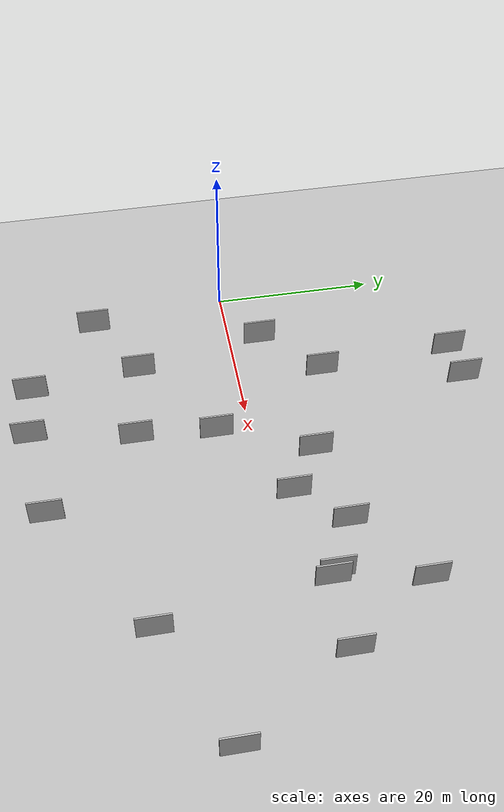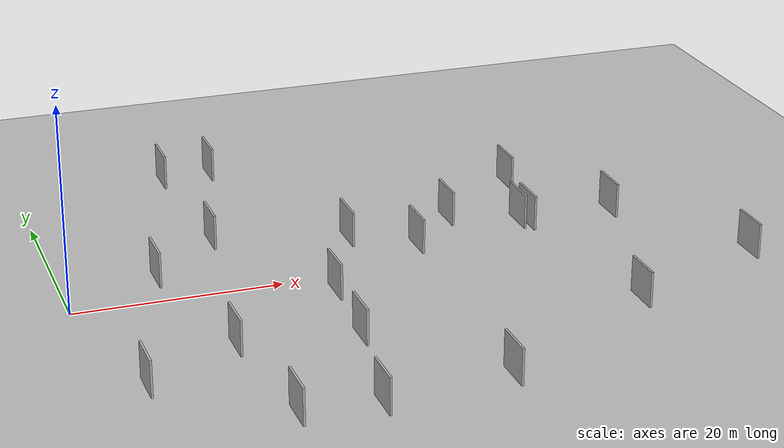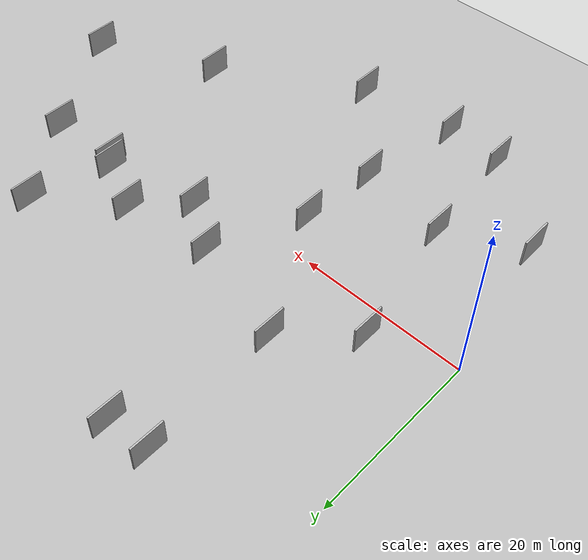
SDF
<?xml version="1.0" encoding="utf-8"?>

<sdf version="1.6">

   <world name="default">

      <gui fullscreen="0">

         <camera name="user_camera">

            <pose>-15 0 4.57585 0 0 0</pose>

            <view_controller>orbit</view_controller>

         </camera>

      </gui>

      <scene>

         <sky>

           <clouds>

             <speed>12</speed>

           </clouds>

         </sky>

         <ambient>0.4 0.4 0.4 1</ambient>

         <background>0.7 0.7 0.7 1</background>

         <shadows>1</shadows>

      </scene>

      <gravity>0 0 -9.8066</gravity>

      <magnetic_field>6e-06 2.3e-05 -4.2e-05</magnetic_field>

      <physics default="0" name="default_physics" type="ode">

         <ode>

            <solver>

               <type>quick</type>

               <iters>10</iters>

               <sor>1.0</sor>

               <use_dynamic_moi_rescaling>0</use_dynamic_moi_rescaling>

            </solver>

            <constraints>

               <cfm>0</cfm>

               <erp>0.2</erp>

               <contact_max_correcting_vel>100</contact_max_correcting_vel>

               <contact_surface_layer>0.001</contact_surface_layer>

            </constraints>

         </ode>

         <max_step_size>0.004</max_step_size>

         <real_time_factor>1</real_time_factor>

         <real_time_update_rate>250</real_time_update_rate>

      </physics>

      <light name="sun" type="directional">

         <cast_shadows>1</cast_shadows>

         <pose>0 0 10 0 0 0</pose>

         <diffuse>0.8 0.8 0.8 1</diffuse>

         <specular>0.2 0.2 0.2 1</specular>

         <attenuation>

            <range>1000</range>

            <constant>0.9</constant>

            <linear>0.01</linear>

            <quadratic>0.001</quadratic>

         </attenuation>

         <direction>-0.5 0.1 -0.9</direction>

      </light>

      <include>

         <name>ground_plane_1</name>

         <uri>model://HANNAS_ground_plane</uri>

         <pose>0 0 0  0 0 0</pose>

      </include>

      <include>

         <name>ground_plane_2</name>

         <uri>model://HANNAS_ground_plane</uri>

         <pose>100 0 0  0 0 0</pose>

      </include>

      <model name="HANNAS_wall_1">

         <static>1</static>

         <pose frame="">48.4677 15.3908 0.0 0.000000 0.000000 1.570796</pose>

         <link name="link">

            <pose frame="">0 0 2.00 0 0 0</pose>

            <collision name="collision">

               <geometry>

                  <box>

                     <size>4.00 0.2 4.00</size>

                  </box>

               </geometry>

               <max_contacts>10</max_contacts>

               <surface>

                  <contact>

                     <ode/>

                  </contact>

                  <bounce/>

                  <friction>

                     <torsional>

                        <ode/>

                     </torsional>

                     <ode/>

                  </friction>

               </surface>

            </collision>

            <visual name="visual">

               <cast_shadows>0</cast_shadows>

               <geometry>

                  <box>

                     <size>4.00 0.2 4.00</size>

                  </box>

               </geometry>

               <material>

                  <script>

                     <uri>model://HANNAS_wall/materials/scripts</uri>

                     <uri>model://HANNAS_wall/materials/textures</uri>

                     <name>vrc/HANNAS_wall</name>

                  </script>

               </material>

            </visual>

            <self_collide>0</self_collide>

            <enable_wind>0</enable_wind>

            <kinematic>0</kinematic>

         </link>

      </model>

      <model name="HANNAS_wall_2">

         <static>1</static>

         <pose frame="">64.0958 -8.1620 0.0 0.000000 0.000000 1.570796</pose>

         <link name="link">

            <pose frame="">0 0 2.00 0 0 0</pose>

            <collision name="collision">

               <geometry>

                  <box>

                     <size>4.00 0.2 4.00</size>

                  </box>

               </geometry>

               <max_contacts>10</max_contacts>

               <surface>

                  <contact>

                     <ode/>

                  </contact>

                  <bounce/>

                  <friction>

                     <torsional>

                        <ode/>

                     </torsional>

                     <ode/>

                  </friction>

               </surface>

            </collision>

            <visual name="visual">

               <cast_shadows>0</cast_shadows>

               <geometry>

                  <box>

                     <size>4.00 0.2 4.00</size>

                  </box>

               </geometry>

               <material>

                  <script>

                     <uri>model://HANNAS_wall/materials/scripts</uri>

                     <uri>model://HANNAS_wall/materials/textures</uri>

                     <name>vrc/HANNAS_wall</name>

                  </script>

               </material>

            </visual>

            <self_collide>0</self_collide>

            <enable_wind>0</enable_wind>

            <kinematic>0</kinematic>

         </link>

      </model>

      <model name="HANNAS_wall_3">

         <static>1</static>

         <pose frame="">39.4368 8.5772 0.0 0.000000 0.000000 1.570796</pose>

         <link name="link">

            <pose frame="">0 0 2.00 0 0 0</pose>

            <collision name="collision">

               <geometry>

                  <box>

                     <size>4.00 0.2 4.00</size>

                  </box>

               </geometry>

               <max_contacts>10</max_contacts>

               <surface>

                  <contact>

                     <ode/>

                  </contact>

                  <bounce/>

                  <friction>

                     <torsional>

                        <ode/>

                     </torsional>

                     <ode/>

                  </friction>

               </surface>

            </collision>

            <visual name="visual">

               <cast_shadows>0</cast_shadows>

               <geometry>

                  <box>

                     <size>4.00 0.2 4.00</size>

                  </box>

               </geometry>

               <material>

                  <script>

                     <uri>model://HANNAS_wall/materials/scripts</uri>

                     <uri>model://HANNAS_wall/materials/textures</uri>

                     <name>vrc/HANNAS_wall</name>

                  </script>

               </material>

            </visual>

            <self_collide>0</self_collide>

            <enable_wind>0</enable_wind>

            <kinematic>0</kinematic>

         </link>

      </model>

      <model name="HANNAS_wall_4">

         <static>1</static>

         <pose frame="">14.8949 27.1481 0.0 0.000000 0.000000 1.570796</pose>

         <link name="link">

            <pose frame="">0 0 2.00 0 0 0</pose>

            <collision name="collision">

               <geometry>

                  <box>

                     <size>4.00 0.2 4.00</size>

                  </box>

               </geometry>

               <max_contacts>10</max_contacts>

               <surface>

                  <contact>

                     <ode/>

                  </contact>

                  <bounce/>

                  <friction>

                     <torsional>

                        <ode/>

                     </torsional>

                     <ode/>

                  </friction>

               </surface>

            </collision>

            <visual name="visual">

               <cast_shadows>0</cast_shadows>

               <geometry>

                  <box>

                     <size>4.00 0.2 4.00</size>

                  </box>

               </geometry>

               <material>

                  <script>

                     <uri>model://HANNAS_wall/materials/scripts</uri>

                     <uri>model://HANNAS_wall/materials/textures</uri>

                     <name>vrc/HANNAS_wall</name>

                  </script>

               </material>

            </visual>

            <self_collide>0</self_collide>

            <enable_wind>0</enable_wind>

            <kinematic>0</kinematic>

         </link>

      </model>

      <model name="HANNAS_wall_5">

         <static>1</static>

         <pose frame="">3.1831 -17.0369 0.0 0.000000 0.000000 1.570796</pose>

         <link name="link">

            <pose frame="">0 0 2.00 0 0 0</pose>

            <collision name="collision">

               <geometry>

                  <box>

                     <size>4.00 0.2 4.00</size>

                  </box>

               </geometry>

               <max_contacts>10</max_contacts>

               <surface>

                  <contact>

                     <ode/>

                  </contact>

                  <bounce/>

                  <friction>

                     <torsional>

                        <ode/>

                     </torsional>

                     <ode/>

                  </friction>

               </surface>

            </collision>

            <visual name="visual">

               <cast_shadows>0</cast_shadows>

               <geometry>

                  <box>

                     <size>4.00 0.2 4.00</size>

                  </box>

               </geometry>

               <material>

                  <script>

                     <uri>model://HANNAS_wall/materials/scripts</uri>

                     <uri>model://HANNAS_wall/materials/textures</uri>

                     <name>vrc/HANNAS_wall</name>

                  </script>

               </material>

            </visual>

            <self_collide>0</self_collide>

            <enable_wind>0</enable_wind>

            <kinematic>0</kinematic>

         </link>

      </model>

      <model name="HANNAS_wall_6">

         <static>1</static>

         <pose frame="">34.3728 3.1856 0.0 0.000000 0.000000 1.570796</pose>

         <link name="link">

            <pose frame="">0 0 2.00 0 0 0</pose>

            <collision name="collision">

               <geometry>

                  <box>

                     <size>4.00 0.2 4.00</size>

                  </box>

               </geometry>

               <max_contacts>10</max_contacts>

               <surface>

                  <contact>

                     <ode/>

                  </contact>

                  <bounce/>

                  <friction>

                     <torsional>

                        <ode/>

                     </torsional>

                     <ode/>

                  </friction>

               </surface>

            </collision>

            <visual name="visual">

               <cast_shadows>0</cast_shadows>

               <geometry>

                  <box>

                     <size>4.00 0.2 4.00</size>

                  </box>

               </geometry>

               <material>

                  <script>

                     <uri>model://HANNAS_wall/materials/scripts</uri>

                     <uri>model://HANNAS_wall/materials/textures</uri>

                     <name>vrc/HANNAS_wall</name>

                  </script>

               </material>

            </visual>

            <self_collide>0</self_collide>

            <enable_wind>0</enable_wind>

            <kinematic>0</kinematic>

         </link>

      </model>

      <model name="HANNAS_wall_7">

         <static>1</static>

         <pose frame="">20.0250 27.7180 0.0 0.000000 0.000000 1.570796</pose>

         <link name="link">

            <pose frame="">0 0 2.00 0 0 0</pose>

            <collision name="collision">

               <geometry>

                  <box>

                     <size>4.00 0.2 4.00</size>

                  </box>

               </geometry>

               <max_contacts>10</max_contacts>

               <surface>

                  <contact>

                     <ode/>

                  </contact>

                  <bounce/>

                  <friction>

                     <torsional>

                        <ode/>

                     </torsional>

                     <ode/>

                  </friction>

               </surface>

            </collision>

            <visual name="visual">

               <cast_shadows>0</cast_shadows>

               <geometry>

                  <box>

                     <size>4.00 0.2 4.00</size>

                  </box>

               </geometry>

               <material>

                  <script>

                     <uri>model://HANNAS_wall/materials/scripts</uri>

                     <uri>model://HANNAS_wall/materials/textures</uri>

                     <name>vrc/HANNAS_wall</name>

                  </script>

               </material>

            </visual>

            <self_collide>0</self_collide>

            <enable_wind>0</enable_wind>

            <kinematic>0</kinematic>

         </link>

      </model>

      <model name="HANNAS_wall_8">

         <static>1</static>

         <pose frame="">32.9250 -24.9039 0.0 0.000000 0.000000 1.570796</pose>

         <link name="link">

            <pose frame="">0 0 2.00 0 0 0</pose>

            <collision name="collision">

               <geometry>

                  <box>

                     <size>4.00 0.2 4.00</size>

                  </box>

               </geometry>

               <max_contacts>10</max_contacts>

               <surface>

                  <contact>

                     <ode/>

                  </contact>

                  <bounce/>

                  <friction>

                     <torsional>

                        <ode/>

                     </torsional>

                     <ode/>

                  </friction>

               </surface>

            </collision>

            <visual name="visual">

               <cast_shadows>0</cast_shadows>

               <geometry>

                  <box>

                     <size>4.00 0.2 4.00</size>

                  </box>

               </geometry>

               <material>

                  <script>

                     <uri>model://HANNAS_wall/materials/scripts</uri>

                     <uri>model://HANNAS_wall/materials/textures</uri>

                     <name>vrc/HANNAS_wall</name>

                  </script>

               </material>

            </visual>

            <self_collide>0</self_collide>

            <enable_wind>0</enable_wind>

            <kinematic>0</kinematic>

         </link>

      </model>

      <model name="HANNAS_wall_9">

         <static>1</static>

         <pose frame="">49.6606 -14.6909 0.0 0.000000 0.000000 1.570796</pose>

         <link name="link">

            <pose frame="">0 0 2.00 0 0 0</pose>

            <collision name="collision">

               <geometry>

                  <box>

                     <size>4.00 0.2 4.00</size>

                  </box>

               </geometry>

               <max_contacts>10</max_contacts>

               <surface>

                  <contact>

                     <ode/>

                  </contact>

                  <bounce/>

                  <friction>

                     <torsional>

                        <ode/>

                     </torsional>

                     <ode/>

                  </friction>

               </surface>

            </collision>

            <visual name="visual">

               <cast_shadows>0</cast_shadows>

               <geometry>

                  <box>

                     <size>4.00 0.2 4.00</size>

                  </box>

               </geometry>

               <material>

                  <script>

                     <uri>model://HANNAS_wall/materials/scripts</uri>

                     <uri>model://HANNAS_wall/materials/textures</uri>

                     <name>vrc/HANNAS_wall</name>

                  </script>

               </material>

            </visual>

            <self_collide>0</self_collide>

            <enable_wind>0</enable_wind>

            <kinematic>0</kinematic>

         </link>

      </model>

      <model name="HANNAS_wall_10">

         <static>1</static>

         <pose frame="">23.0791 -13.6613 0.0 0.000000 0.000000 1.570796</pose>

         <link name="link">

            <pose frame="">0 0 2.00 0 0 0</pose>

            <collision name="collision">

               <geometry>

                  <box>

                     <size>4.00 0.2 4.00</size>

                  </box>

               </geometry>

               <max_contacts>10</max_contacts>

               <surface>

                  <contact>

                     <ode/>

                  </contact>

                  <bounce/>

                  <friction>

                     <torsional>

                        <ode/>

                     </torsional>

                     <ode/>

                  </friction>

               </surface>

            </collision>

            <visual name="visual">

               <cast_shadows>0</cast_shadows>

               <geometry>

                  <box>

                     <size>4.00 0.2 4.00</size>

                  </box>

               </geometry>

               <material>

                  <script>

                     <uri>model://HANNAS_wall/materials/scripts</uri>

                     <uri>model://HANNAS_wall/materials/textures</uri>

                     <name>vrc/HANNAS_wall</name>

                  </script>

               </material>

            </visual>

            <self_collide>0</self_collide>

            <enable_wind>0</enable_wind>

            <kinematic>0</kinematic>

         </link>

      </model>

      <model name="HANNAS_wall_11">

         <static>1</static>

         <pose frame="">8.8388 3.7757 0.0 0.000000 0.000000 1.570796</pose>

         <link name="link">

            <pose frame="">0 0 2.00 0 0 0</pose>

            <collision name="collision">

               <geometry>

                  <box>

                     <size>4.00 0.2 4.00</size>

                  </box>

               </geometry>

               <max_contacts>10</max_contacts>

               <surface>

                  <contact>

                     <ode/>

                  </contact>

                  <bounce/>

                  <friction>

                     <torsional>

                        <ode/>

                     </torsional>

                     <ode/>

                  </friction>

               </surface>

            </collision>

            <visual name="visual">

               <cast_shadows>0</cast_shadows>

               <geometry>

                  <box>

                     <size>4.00 0.2 4.00</size>

                  </box>

               </geometry>

               <material>

                  <script>

                     <uri>model://HANNAS_wall/materials/scripts</uri>

                     <uri>model://HANNAS_wall/materials/textures</uri>

                     <name>vrc/HANNAS_wall</name>

                  </script>

               </material>

            </visual>

            <self_collide>0</self_collide>

            <enable_wind>0</enable_wind>

            <kinematic>0</kinematic>

         </link>

      </model>

      <model name="HANNAS_wall_12">

         <static>1</static>

         <pose frame="">20.8312 -26.2066 0.0 0.000000 0.000000 1.570796</pose>

         <link name="link">

            <pose frame="">0 0 2.00 0 0 0</pose>

            <collision name="collision">

               <geometry>

                  <box>

                     <size>4.00 0.2 4.00</size>

                  </box>

               </geometry>

               <max_contacts>10</max_contacts>

               <surface>

                  <contact>

                     <ode/>

                  </contact>

                  <bounce/>

                  <friction>

                     <torsional>

                        <ode/>

                     </torsional>

                     <ode/>

                  </friction>

               </surface>

            </collision>

            <visual name="visual">

               <cast_shadows>0</cast_shadows>

               <geometry>

                  <box>

                     <size>4.00 0.2 4.00</size>

                  </box>

               </geometry>

               <material>

                  <script>

                     <uri>model://HANNAS_wall/materials/scripts</uri>

                     <uri>model://HANNAS_wall/materials/textures</uri>

                     <name>vrc/HANNAS_wall</name>

                  </script>

               </material>

            </visual>

            <self_collide>0</self_collide>

            <enable_wind>0</enable_wind>

            <kinematic>0</kinematic>

         </link>

      </model>

      <model name="HANNAS_wall_13">

         <static>1</static>

         <pose frame="">45.8858 5.6505 0.0 0.000000 0.000000 1.570796</pose>

         <link name="link">

            <pose frame="">0 0 2.00 0 0 0</pose>

            <collision name="collision">

               <geometry>

                  <box>

                     <size>4.00 0.2 4.00</size>

                  </box>

               </geometry>

               <max_contacts>10</max_contacts>

               <surface>

                  <contact>

                     <ode/>

                  </contact>

                  <bounce/>

                  <friction>

                     <torsional>

                        <ode/>

                     </torsional>

                     <ode/>

                  </friction>

               </surface>

            </collision>

            <visual name="visual">

               <cast_shadows>0</cast_shadows>

               <geometry>

                  <box>

                     <size>4.00 0.2 4.00</size>

                  </box>

               </geometry>

               <material>

                  <script>

                     <uri>model://HANNAS_wall/materials/scripts</uri>

                     <uri>model://HANNAS_wall/materials/textures</uri>

                     <name>vrc/HANNAS_wall</name>

                  </script>

               </material>

            </visual>

            <self_collide>0</self_collide>

            <enable_wind>0</enable_wind>

            <kinematic>0</kinematic>

         </link>

      </model>

      <model name="HANNAS_wall_14">

         <static>1</static>

         <pose frame="">15.8014 10.5231 0.0 0.000000 0.000000 1.570796</pose>

         <link name="link">

            <pose frame="">0 0 2.00 0 0 0</pose>

            <collision name="collision">

               <geometry>

                  <box>

                     <size>4.00 0.2 4.00</size>

                  </box>

               </geometry>

               <max_contacts>10</max_contacts>

               <surface>

                  <contact>

                     <ode/>

                  </contact>

                  <bounce/>

                  <friction>

                     <torsional>

                        <ode/>

                     </torsional>

                     <ode/>

                  </friction>

               </surface>

            </collision>

            <visual name="visual">

               <cast_shadows>0</cast_shadows>

               <geometry>

                  <box>

                     <size>4.00 0.2 4.00</size>

                  </box>

               </geometry>

               <material>

                  <script>

                     <uri>model://HANNAS_wall/materials/scripts</uri>

                     <uri>model://HANNAS_wall/materials/textures</uri>

                     <name>vrc/HANNAS_wall</name>

                  </script>

               </material>

            </visual>

            <self_collide>0</self_collide>

            <enable_wind>0</enable_wind>

            <kinematic>0</kinematic>

         </link>

      </model>

      <model name="HANNAS_wall_15">

         <static>1</static>

         <pose frame="">23.8024 -4.1161 0.0 0.000000 0.000000 1.570796</pose>

         <link name="link">

            <pose frame="">0 0 2.00 0 0 0</pose>

            <collision name="collision">

               <geometry>

                  <box>

                     <size>4.00 0.2 4.00</size>

                  </box>

               </geometry>

               <max_contacts>10</max_contacts>

               <surface>

                  <contact>

                     <ode/>

                  </contact>

                  <bounce/>

                  <friction>

                     <torsional>

                        <ode/>

                     </torsional>

                     <ode/>

                  </friction>

               </surface>

            </collision>

            <visual name="visual">

               <cast_shadows>0</cast_shadows>

               <geometry>

                  <box>

                     <size>4.00 0.2 4.00</size>

                  </box>

               </geometry>

               <material>

                  <script>

                     <uri>model://HANNAS_wall/materials/scripts</uri>

                     <uri>model://HANNAS_wall/materials/textures</uri>

                     <name>vrc/HANNAS_wall</name>

                  </script>

               </material>

            </visual>

            <self_collide>0</self_collide>

            <enable_wind>0</enable_wind>

            <kinematic>0</kinematic>

         </link>

      </model>

      <model name="HANNAS_wall_16">

         <static>1</static>

         <pose frame="">28.5617 6.9822 0.0 0.000000 0.000000 1.570796</pose>

         <link name="link">

            <pose frame="">0 0 2.00 0 0 0</pose>

            <collision name="collision">

               <geometry>

                  <box>

                     <size>4.00 0.2 4.00</size>

                  </box>

               </geometry>

               <max_contacts>10</max_contacts>

               <surface>

                  <contact>

                     <ode/>

                  </contact>

                  <bounce/>

                  <friction>

                     <torsional>

                        <ode/>

                     </torsional>

                     <ode/>

                  </friction>

               </surface>

            </collision>

            <visual name="visual">

               <cast_shadows>0</cast_shadows>

               <geometry>

                  <box>

                     <size>4.00 0.2 4.00</size>

                  </box>

               </geometry>

               <material>

                  <script>

                     <uri>model://HANNAS_wall/materials/scripts</uri>

                     <uri>model://HANNAS_wall/materials/textures</uri>

                     <name>vrc/HANNAS_wall</name>

                  </script>

               </material>

            </visual>

            <self_collide>0</self_collide>

            <enable_wind>0</enable_wind>

            <kinematic>0</kinematic>

         </link>

      </model>

      <model name="HANNAS_wall_17">

         <static>1</static>

         <pose frame="">55.5647 5.2991 0.0 0.000000 0.000000 1.570796</pose>

         <link name="link">

            <pose frame="">0 0 2.00 0 0 0</pose>

            <collision name="collision">

               <geometry>

                  <box>

                     <size>4.00 0.2 4.00</size>

                  </box>

               </geometry>

               <max_contacts>10</max_contacts>

               <surface>

                  <contact>

                     <ode/>

                  </contact>

                  <bounce/>

                  <friction>

                     <torsional>

                        <ode/>

                     </torsional>

                     <ode/>

                  </friction>

               </surface>

            </collision>

            <visual name="visual">

               <cast_shadows>0</cast_shadows>

               <geometry>

                  <box>

                     <size>4.00 0.2 4.00</size>

                  </box>

               </geometry>

               <material>

                  <script>

                     <uri>model://HANNAS_wall/materials/scripts</uri>

                     <uri>model://HANNAS_wall/materials/textures</uri>

                     <name>vrc/HANNAS_wall</name>

                  </script>

               </material>

            </visual>

            <self_collide>0</self_collide>

            <enable_wind>0</enable_wind>

            <kinematic>0</kinematic>

         </link>

      </model>

      <model name="HANNAS_wall_18">

         <static>1</static>

         <pose frame="">46.6556 5.0081 0.0 0.000000 0.000000 1.570796</pose>

         <link name="link">

            <pose frame="">0 0 2.00 0 0 0</pose>

            <collision name="collision">

               <geometry>

                  <box>

                     <size>4.00 0.2 4.00</size>

                  </box>

               </geometry>

               <max_contacts>10</max_contacts>

               <surface>

                  <contact>

                     <ode/>

                  </contact>

                  <bounce/>

                  <friction>

                     <torsional>

                        <ode/>

                     </torsional>

                     <ode/>

                  </friction>

               </surface>

            </collision>

            <visual name="visual">

               <cast_shadows>0</cast_shadows>

               <geometry>

                  <box>

                     <size>4.00 0.2 4.00</size>

                  </box>

               </geometry>

               <material>

                  <script>

                     <uri>model://HANNAS_wall/materials/scripts</uri>

                     <uri>model://HANNAS_wall/materials/textures</uri>

                     <name>vrc/HANNAS_wall</name>

                  </script>

               </material>

            </visual>

            <self_collide>0</self_collide>

            <enable_wind>0</enable_wind>

            <kinematic>0</kinematic>

         </link>

      </model>

      <model name="HANNAS_wall_19">

         <static>1</static>

         <pose frame="">13.6632 -25.6406 0.0 0.000000 0.000000 1.570796</pose>

         <link name="link">

            <pose frame="">0 0 2.00 0 0 0</pose>

            <collision name="collision">

               <geometry>

                  <box>

                     <size>4.00 0.2 4.00</size>

                  </box>

               </geometry>

               <max_contacts>10</max_contacts>

               <surface>

                  <contact>

                     <ode/>

                  </contact>

                  <bounce/>

                  <friction>

                     <torsional>

                        <ode/>

                     </torsional>

                     <ode/>

                  </friction>

               </surface>

            </collision>

            <visual name="visual">

               <cast_shadows>0</cast_shadows>

               <geometry>

                  <box>

                     <size>4.00 0.2 4.00</size>

                  </box>

               </geometry>

               <material>

                  <script>

                     <uri>model://HANNAS_wall/materials/scripts</uri>

                     <uri>model://HANNAS_wall/materials/textures</uri>

                     <name>vrc/HANNAS_wall</name>

                  </script>

               </material>

            </visual>

            <self_collide>0</self_collide>

            <enable_wind>0</enable_wind>

            <kinematic>0</kinematic>

         </link>

      </model>

      <model name="HANNAS_wall_20">

         <static>1</static>

         <pose frame="">12.1807 -12.1707 0.0 0.000000 0.000000 1.570796</pose>

         <link name="link">

            <pose frame="">0 0 2.00 0 0 0</pose>

            <collision name="collision">

               <geometry>

                  <box>

                     <size>4.00 0.2 4.00</size>

                  </box>

               </geometry>

               <max_contacts>10</max_contacts>

               <surface>

                  <contact>

                     <ode/>

                  </contact>

                  <bounce/>

                  <friction>

                     <torsional>

                        <ode/>

                     </torsional>

                     <ode/>

                  </friction>

               </surface>

            </collision>

            <visual name="visual">

               <cast_shadows>0</cast_shadows>

               <geometry>

                  <box>

                     <size>4.00 0.2 4.00</size>

                  </box>

               </geometry>

               <material>

                  <script>

                     <uri>model://HANNAS_wall/materials/scripts</uri>

                     <uri>model://HANNAS_wall/materials/textures</uri>

                     <name>vrc/HANNAS_wall</name>

                  </script>

               </material>

            </visual>

            <self_collide>0</self_collide>

            <enable_wind>0</enable_wind>

            <kinematic>0</kinematic>

         </link>

      </model>

   </world>

</sdf>

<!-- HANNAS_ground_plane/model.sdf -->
<sdf version="1.4">
<model name="HANNAS_ground_plane">
  <static>true</static>
    <link name="link">
      <collision name="collision">
        <geometry>
          <plane>
            <normal>0 0 1</normal>
            <size>1000 1000</size>
          </plane>
        </geometry>
        <surface>
          <friction>
            <ode>
              <mu>100</mu>
              <mu2>50</mu2>
            </ode>
          </friction>
        </surface>
      </collision>
      <visual name="visual">
        <cast_shadows>false</cast_shadows>
        <geometry>
          <plane>
            <normal>0 0 1</normal>
            <size>1000 1000</size>
          </plane>
        </geometry>
        <material>
          <script>
            <uri>model://HANNAS_ground_plane/materials/scripts/HANNAS_ground_plane.material</uri>
	    <uri>model://HANNAS_ground_plane/materials/textures</uri>
            <name>HANNASGroundPlane/Image</name>
          </script>
        </material>
      </visual>
    </link>
  </model>
</sdf>
